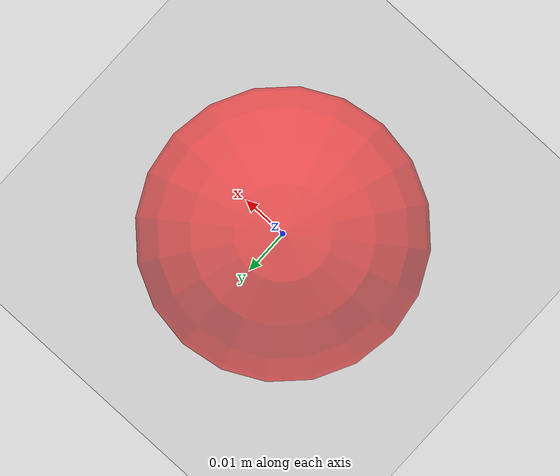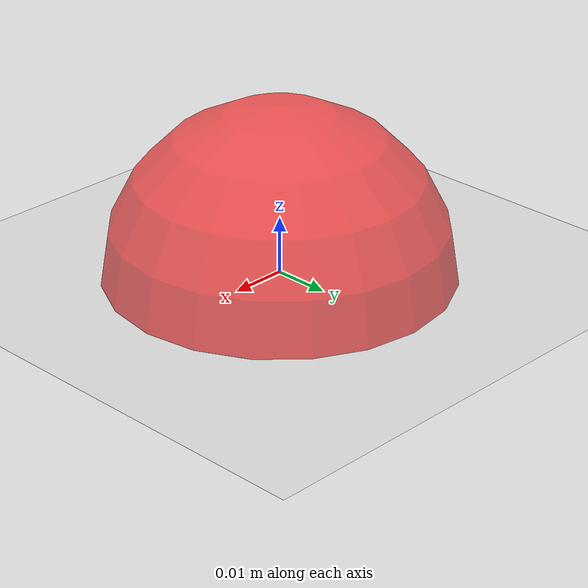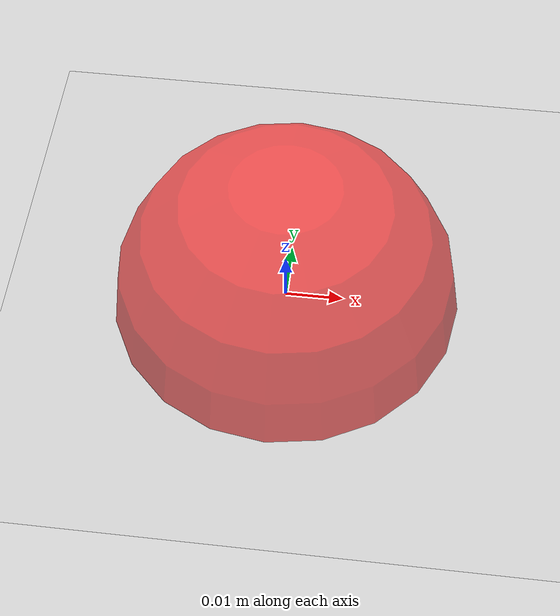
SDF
<sdf version="1.6">
 <world name="default">
  <model name="ground_plane">
   <static>1</static>
   <link name="link">
    <collision name="collision">
     <geometry><plane><normal>0 0 1</normal><size>100 100</size></plane></geometry>
     <surface><friction><ode><mu>100</mu><mu2>50</mu2></ode></friction></surface>
    </collision>
    <visual name="visual">
     <cast_shadows>0</cast_shadows>
     <geometry><plane><normal>0 0 1</normal><size>100 100</size></plane></geometry>
     <material>
      <script><uri>file://media/materials/scripts/gazebo.material</uri><name>Gazebo/Grey</name></script>
     </material>
    </visual>
   </link>
  </model>
  <model name="RightHandTarget">
   <static>1</static>
   <link name="link">
    <visual name="visual">
     <geometry><sphere><radius>0.03</radius></sphere></geometry>
     <material><ambient>1 0 0 0.6</ambient><diffuse>1 0 0 0.6</diffuse></material>
     <transparency>0.2</transparency>
    </visual>
   </link>
   <plugin name="yarp_model_move" filename="libyarp_model_move.so"/>
   <plugin name="task_optimization_change_color" filename="libtask_optimization_change_color.so"/>
  </model>
 </world>
</sdf>
